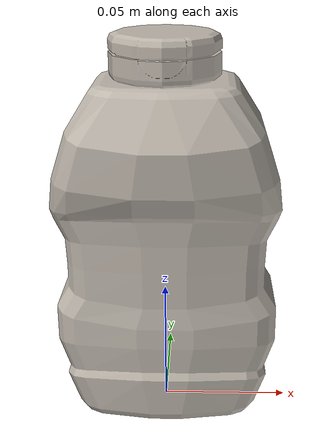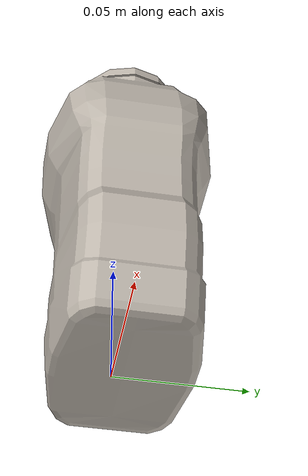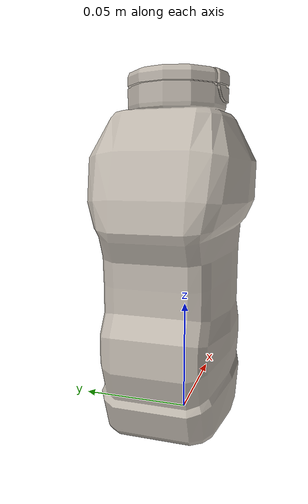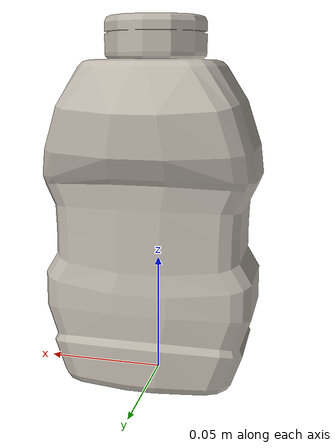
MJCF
<?xml version="1.0" encoding="utf-8"?>
<mujoco model="ketchup">
  <compiler angle="radian" meshdir="assets" texturedir="assets" autolimits="true"/>
  <asset>
    <mesh file="ketchup.obj"/>
    <texture type="2d" name="ketchup" file="ketchup.png"/>
    <material name="ketchup" specular="0.2" shininess="0.2" texture="ketchup"/>
  </asset>
  <default>
    <default class="ketchup">
      <geom type="mesh" mass="0.1" solimp="0.95 0.98 0.001" solref="0.004 1"/>
      <default class="balance">
        <geom group="3" type="sphere" mass="0.1" size="0.01" pos="0 0 -0.02" contype="0" conaffinity="0"/>
      </default>
    </default>
  </default>
  <worldbody>
    <body name="ketchup" childclass="ketchup">
      <geom name="ketchup" mesh="ketchup" material="ketchup" euler="1.5708 0 0"/>
      <geom class="balance"/>
    </body>
  </worldbody>
</mujoco>
